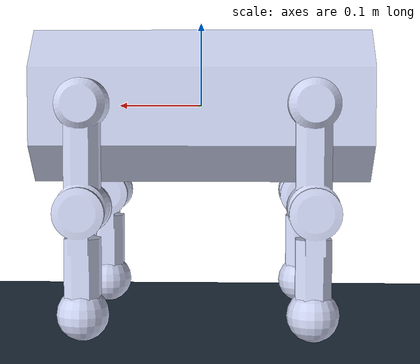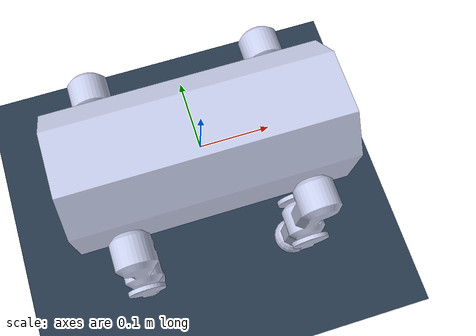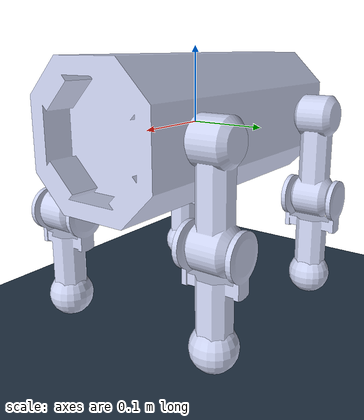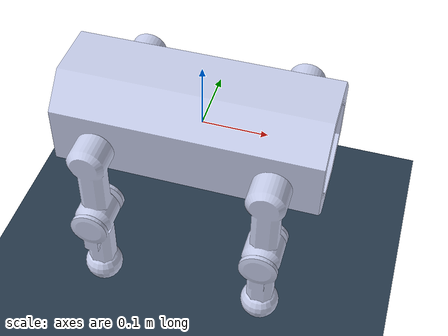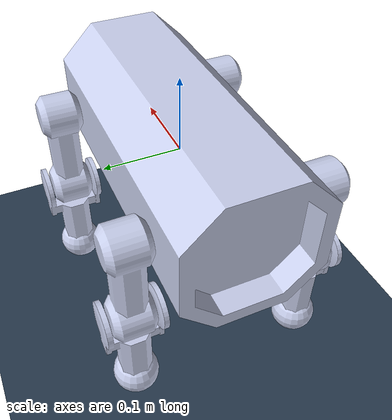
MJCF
<mujoco model="doggo_walker">
    <compiler inertiafromgeom="true" angle="radian"/>

    <default>
        <joint limited="true" damping="0" armature="0"/>
        <geom condim="1" material="matgeom"/>
        <motor ctrlrange="-.4 .4" ctrllimited="true"/>
    </default>

    <option timestep="0.005" iterations="50" tolerance="1e-10" solver="Newton" jacobian="dense" cone="pyramidal"/>
    <size nconmax="50" njmax="200" nstack="10000"/>

    <visual>
        <map force="0.1" zfar="30"/>
        <rgba haze="0.15 0.25 0.35 1"/>
        <quality shadowsize="2048"/>
        <global offwidth="800" offheight="800"/>
    </visual>

    <asset>
        <mesh name="body" file="body.stl" />
        <mesh name="femur" file="femur.stl" />
        <mesh name="lower_leg" file="lower_leg.stl" />

        <texture type="skybox" builtin="gradient" rgb1="0.3 0.5 0.7" rgb2="0 0 0" width="512" height="512"/>
        <texture name="texplane" type="2d" builtin="checker" rgb1=".2 .3 .4" rgb2=".1 0.15 0.2" width="512" height="512" mark="cross" markrgb=".8 .8 .8"/>
        <texture name="texgeom" type="cube" builtin="flat" mark="cross" width="127" height="1278"
            rgb1="0.8 0.6 0.4" rgb2="0.8 0.6 0.4" markrgb="1 1 1" random="0.01"/>
        <material name="matplane" reflectance="0.3" texture="texplane" texrepeat="1 1" texuniform="true"/>
        <material name="matgeom" texture="texgeom" texuniform="true" rgba="0.8 0.6 .4 1"/>
    </asset>
    <worldbody >
        <geom name="floor" pos="0 0 -0.27" size="0 0 .25" type="plane" material="matplane" condim="3"/>

        <light directional="false" diffuse=".2 .2 .2" specular="0 0 0" pos="0 0 5" dir="0 0 -1" castshadow="false"/>

        <geom type="mesh" rgba="0.79216 0.81961 0.93333 1" mesh="body" />
        <body name="front_right_femur" pos="0.13 -0.12 0">
            <inertial pos="0 0 -0.055" quat="-7.20094e-05 0.707107 0.707107 -7.20094e-05" mass="0.4" diaginertia="0.00135004 0.00135004 0.000266667" />
            <joint name="FRFJ" pos="0 0 0" axis="0 1 0" limited="true" range="-0.7 0.7" />
            <geom pos="0 0 -0.055" quat="0.707035 0 0 0.707179" type="mesh" rgba="0.79216 0.81961 0.93333 1" mesh="femur" />
            <body name="front_right_lower_leg" pos="0 0 -0.115">
                <inertial pos="0 0 -0.084" quat="1 0 7.15163e-05 0" mass="0.5" diaginertia="0.000980247 0.00081992 0.000436139" />
                <joint name="FRLLJ" pos="0 0 0" axis="0 1 0" limited="true" range="-1.2 1.2" />
                <geom pos="0 0 -0.075" quat="0.707035 0 0 0.707179" type="mesh" rgba="0.79216 0.81961 0.93333 1" mesh="lower_leg" />
                <geom size="0.03" pos="0 0 -0.12" rgba="0.79216 0.81961 0.93333 1" />
            </body>
        </body>
        <body name="front_left_femur" pos="0.13 0.12 0">
            <inertial pos="0 0 -0.055" quat="-7.20094e-05 0.707107 0.707107 -7.20094e-05" mass="0.4" diaginertia="0.00135004 0.00135004 0.000266667" />
            <joint name="FLFJ" pos="0 0 0" axis="0 1 0" limited="true" range="-0.7 0.7" />
            <geom pos="0 0 -0.055" quat="0.707035 0 0 0.707179" type="mesh" rgba="0.79216 0.81961 0.93333 1" mesh="femur" />
            <body name="front_left_lower_leg" pos="0 0 -0.115">
                <inertial pos="0 0 -0.084" quat="1 0 7.15163e-05 0" mass="0.5" diaginertia="0.000980247 0.00081992 0.000436139" />
                <joint name="FLLLJ" pos="0 0 0" axis="0 1 0" limited="true" range="-1.2 1.2" />
                <geom pos="0 0 -0.075" quat="0.707035 0 0 0.707179" type="mesh" rgba="0.79216 0.81961 0.93333 1" mesh="lower_leg" />
                <geom size="0.03" pos="0 0 -0.12" rgba="0.79216 0.81961 0.93333 1" />
            </body>
        </body>
        <body name="rear_right_femur" pos="-0.13 -0.12 0">
            <inertial pos="0 0 -0.055" quat="-7.20094e-05 0.707107 0.707107 -7.20094e-05" mass="0.4" diaginertia="0.00135004 0.00135004 0.000266667" />
            <joint name="RRFJ" pos="0 0 0" axis="0 1 0" limited="true" range="-0.7 0.7" />
            <geom pos="0 0 -0.055" quat="0.707035 0 0 0.707179" type="mesh" rgba="0.79216 0.81961 0.93333 1" mesh="femur" />
            <body name="rear_right_lower_leg" pos="0 0 -0.115">
                <inertial pos="0 0 -0.084" quat="1 0 7.15163e-05 0" mass="0.5" diaginertia="0.000980247 0.00081992 0.000436139" />
                <joint name="RRLLJ" pos="0 0 0" axis="0 1 0" limited="true" range="-1.2 1.2" />
                <geom pos="0 0 -0.075" quat="0.707035 0 0 0.707179" type="mesh" rgba="0.79216 0.81961 0.93333 1" mesh="lower_leg" />
                <geom size="0.03" pos="0 0 -0.12" rgba="0.79216 0.81961 0.93333 1" />
            </body>
        </body>
        <body name="rear_left_femur" pos="-0.13 0.12 0">
            <inertial pos="0 0 -0.055" quat="-7.20094e-05 0.707107 0.707107 -7.20094e-05" mass="0.4" diaginertia="0.00135004 0.00135004 0.000266667" />
            <joint name="RLFJ" pos="0 0 0" axis="0 1 0" limited="true" range="-0.7 0.7" />
            <geom pos="0 0 -0.055" quat="0.707035 0 0 0.707179" type="mesh" rgba="0.79216 0.81961 0.93333 1" mesh="femur" />
            <body name="rear_left_lower_leg" pos="0 0 -0.115">
                <inertial pos="0 0 -0.084" quat="1 0 7.15163e-05 0" mass="0.5" diaginertia="0.000980247 0.00081992 0.000436139" />
                <joint name="RLLLJ" pos="0 0 0" axis="0 1 0" limited="true" range="-1.2 1.2" />
                <geom pos="0 0 -0.075" quat="0.707035 0 0 0.707179" type="mesh" rgba="0.79216 0.81961 0.93333 1" mesh="lower_leg" />
                <geom size="0.03" pos="0 0 -0.12" rgba="0.79216 0.81961 0.93333 1" />
            </body>
        </body>
    </worldbody>

    <actuator>
        <motor name="right_hip_x"     gear="3" joint="FRFJ" />
        <motor name="right_hip_z"     gear="3" joint="FRLLJ" />
        <motor name="right_hip_y"     gear="3" joint="FLFJ" />
        <motor name="knee_right"      gear="3" joint="FLLLJ" />
        <motor name="left_hip_x"      gear="3" joint="RRFJ" />
        <motor name="left_hip_z"      gear="3" joint="RRLLJ" />
        <motor name="left_hip_y"      gear="3" joint="RLFJ" />
        <motor name="knee_left"       gear="3" joint="RLLLJ" />
    </actuator>

</mujoco>
